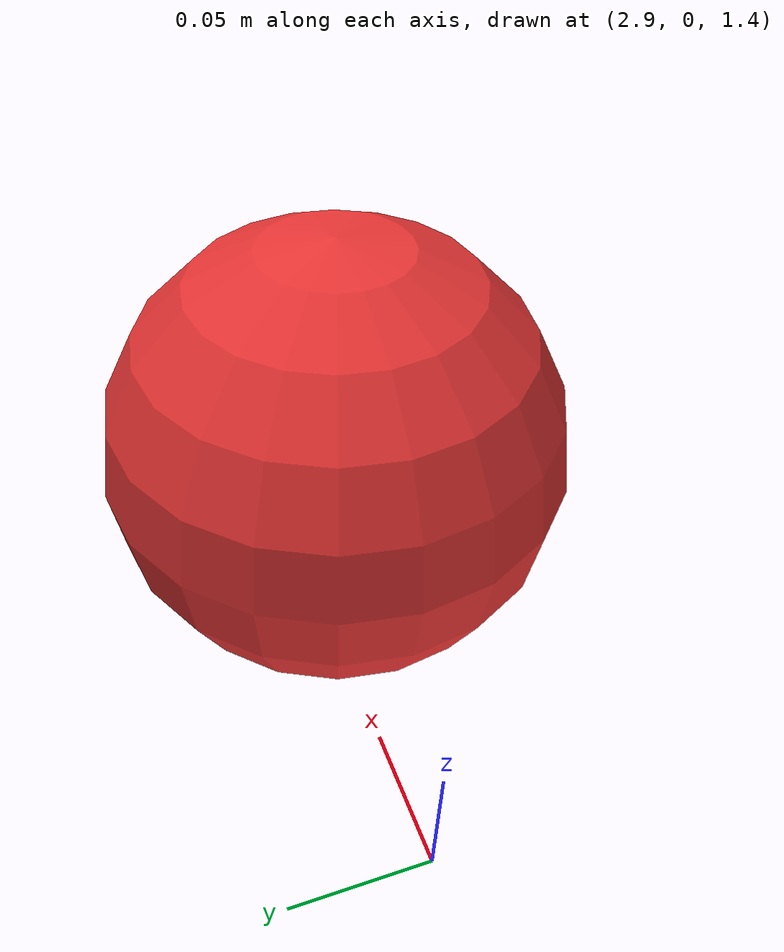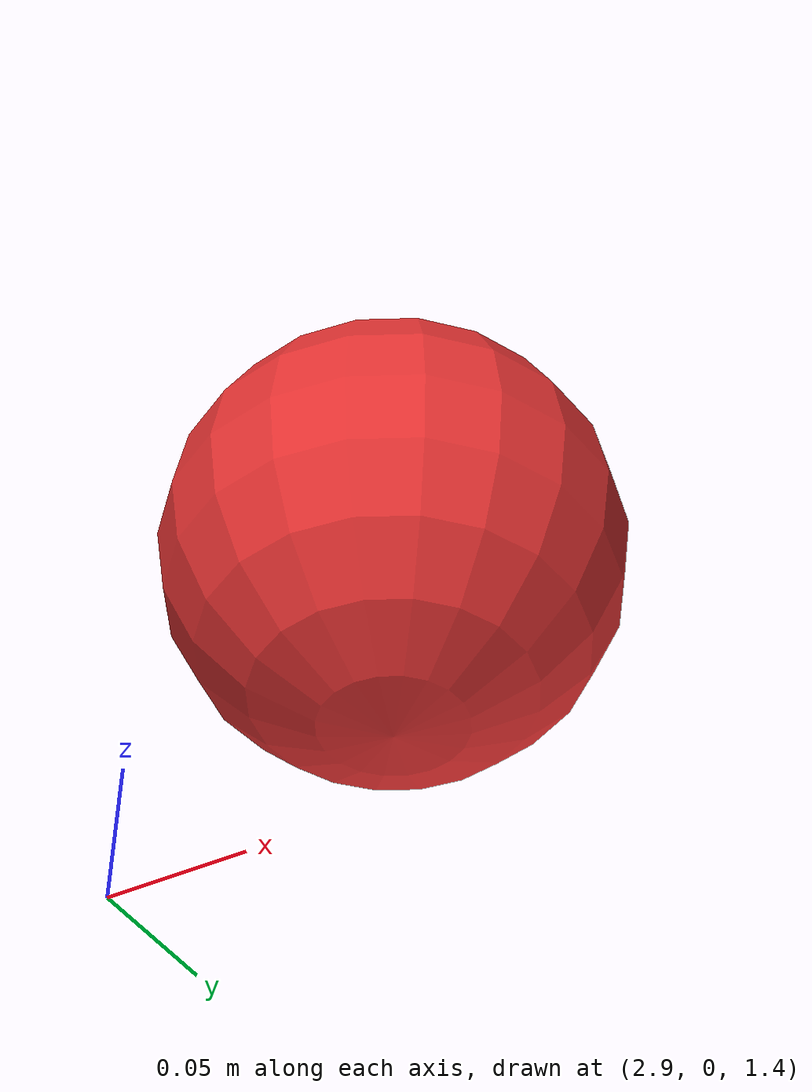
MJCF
<mujoco model="g1_dodge_browser">
  <compiler angle="radian" autolimits="true"/>

  <option timestep="0.005" iterations="10" ls_iterations="20" integrator="implicitfast"/>

  <default>
    <default class="g1">
      <default class="collision">
        <geom type="capsule" priority="1" condim="1" group="3"/>
        <default class="foot_capsule">
          <geom size="0.01" condim="3" friction="0.6 0.005 0.0001"/>
        </default>
      </default>
      <site rgba="1 0 0 1" group="5"/>
    </default>
  </default>

  <asset>
    <material name="silver" rgba="0.7 0.7 0.7 1"/>
    <material name="black" rgba="0.2 0.2 0.2 1"/>

    <texture name="grid" type="2d" builtin="checker" rgb1="0.18 0.20 0.23" rgb2="0.23 0.25 0.29"
             width="512" height="512"/>
    <material name="grid" texture="grid" texrepeat="8 8" texuniform="true" reflectance="0.05"/>

  </asset>

  <worldbody>
    <geom name="floor" type="plane" size="0 0 0.05" material="grid"/>
    <light pos="0 0 4" dir="0 0 -1" directional="true"/>
    <body name="pelvis" pos="0 0 0.79" childclass="g1">
      <light pos="0 0 2" mode="trackcom"/>
      <camera name="tracking" pos="1.734 -1.135 .35" xyaxes="0.552 0.834 -0.000 -0.170 0.112 0.979" mode="trackcom"/>
      <inertial pos="0 0 -0.07605" quat="1 0 -0.000399148 0" mass="3.813" diaginertia="0.010549 0.0093089 0.0079184"/>
      <freejoint name="floating_base_joint"/>
      <geom name="pelvis_collision" class="collision" type="sphere" size="0.07" pos="0 0 -0.08"/>
      <site name="imu_in_pelvis" size="0.01" pos="0.04525 0 -0.08339"/>
      <body name="left_hip_pitch_link" pos="0 0.064452 -0.1027">
        <inertial pos="0.002741 0.047791 -0.02606" quat="0.954862 0.293964 0.0302556 0.030122" mass="1.35" diaginertia="0.00181517 0.00153422 0.00116212"/>
        <joint name="left_hip_pitch_joint" axis="0 1 0" range="-2.5307 2.8798" armature="0.02510192500"/>
        <body name="left_hip_roll_link" pos="0 0.052 -0.030465" quat="0.996179 0 -0.0873386 0">
          <inertial pos="0.029812 -0.001045 -0.087934" quat="0.977808 -1.97119e-05 0.205576 -0.0403793" mass="1.52" diaginertia="0.00254986 0.00241169 0.00148755"/>
          <joint name="left_hip_roll_joint" axis="1 0 0" range="-0.5236 2.9671" armature="0.02510192500"/>
          <geom name="left_hip_collision" class="collision" size="0.06" fromto="0.02 0 0 0.02 0 -0.08"/>
          <body name="left_hip_yaw_link" pos="0.025001 0 -0.12412">
            <inertial pos="-0.057709 -0.010981 -0.15078" quat="0.600598 0.15832 0.223482 0.751181" mass="1.702" diaginertia="0.00776166 0.00717575 0.00160139"/>
            <joint name="left_hip_yaw_joint" axis="0 0 1" range="-2.7576 2.7576" armature="0.01017752004"/>
            <geom name="left_thigh_collision" class="collision" size="0.055" fromto="-0.0 0 -0.03 -0.06 0 -0.17"/>
            <body name="left_knee_link" pos="-0.078273 0.0021489 -0.17734" quat="0.996179 0 0.0873386 0">
              <inertial pos="0.005457 0.003964 -0.12074" quat="0.923418 -0.0327699 0.0158246 0.382067" mass="1.932" diaginertia="0.0113804 0.0112778 0.00146458"/>
              <joint name="left_knee_joint" axis="0 1 0" range="-0.087267 2.8798" armature="0.02510192500"/>
              <geom name="left_shin_collision" class="collision" size="0.045" fromto="0.01 0 0 0.01 0 -0.15"/>
              <geom name="left_linkage_brace_collision" class="collision" size="0.03" fromto="0.01 0 -0.2 0.01 0 -0.28"/>
              <body name="left_ankle_pitch_link" pos="0 -9.4445e-05 -0.30001">
                <inertial pos="-0.007269 0 0.011137" quat="0.603053 0.369225 0.369225 0.603053" mass="0.074" diaginertia="1.89e-05 1.40805e-05 6.9195e-06"/>
                <joint name="left_ankle_pitch_joint" axis="0 1 0" range="-0.87267 0.5236" armature="0.007219450000"/>
                <body name="left_ankle_roll_link" pos="0 0 -0.017558">
                  <inertial pos="0.026505 0 -0.016425" quat="-0.000481092 0.728482 -0.000618967 0.685065" mass="0.608" diaginertia="0.00167218 0.0016161 0.000217621"/>
                  <joint name="left_ankle_roll_joint" axis="1 0 0" range="-0.2618 0.2618" armature="0.007219450000"/>
                  <geom name="left_foot1_collision" class="foot_capsule" fromto="0.1 -0.026 -0.025 0.05 -0.027 -0.025"/>
                  <geom name="left_foot2_collision" class="foot_capsule" fromto="-0.044 -0.018 -0.025 0.123 -0.018 -0.025"/>
                  <geom name="left_foot3_collision" class="foot_capsule" fromto="-0.052 -0.01 -0.025 0.13 -0.01 -0.025"/>
                  <geom name="left_foot4_collision" class="foot_capsule" fromto="-0.054 0 -0.025 0.132 0 -0.025"/>
                  <geom name="left_foot5_collision" class="foot_capsule" fromto="-0.052 0.01 -0.025 0.13 0.01 -0.025"/>
                  <geom name="left_foot6_collision" class="foot_capsule" fromto="-0.044 0.018 -0.025 0.123 0.018 -0.025"/>
                  <geom name="left_foot7_collision" class="foot_capsule" fromto="0.1 0.026 -0.025 0.05 0.026 -0.025"/>
                  <site name="left_foot" rgba="1 0 0 1" pos="0.04 0 -0.035"/>
                </body>
              </body>
            </body>
          </body>
        </body>
      </body>
      <body name="right_hip_pitch_link" pos="0 -0.064452 -0.1027">
        <inertial pos="0.002741 -0.047791 -0.02606" quat="0.954862 -0.293964 0.0302556 -0.030122" mass="1.35" diaginertia="0.00181517 0.00153422 0.00116212"/>
        <joint name="right_hip_pitch_joint" axis="0 1 0" range="-2.5307 2.8798" armature="0.02510192500"/>
        <body name="right_hip_roll_link" pos="0 -0.052 -0.030465" quat="0.996179 0 -0.0873386 0">
          <inertial pos="0.029812 0.001045 -0.087934" quat="0.977808 1.97119e-05 0.205576 0.0403793" mass="1.52" diaginertia="0.00254986 0.00241169 0.00148755"/>
          <joint name="right_hip_roll_joint" axis="1 0 0" range="-2.9671 0.5236" armature="0.02510192500"/>
          <geom name="right_hip_collision" class="collision" size="0.06" fromto="0.02 0 0 0.02 0 -0.08"/>
          <body name="right_hip_yaw_link" pos="0.025001 0 -0.12412">
            <inertial pos="-0.057709 0.010981 -0.15078" quat="0.751181 0.223482 0.15832 0.600598" mass="1.702" diaginertia="0.00776166 0.00717575 0.00160139"/>
            <joint name="right_hip_yaw_joint" axis="0 0 1" range="-2.7576 2.7576" armature="0.01017752004"/>
            <geom name="right_thigh_collision" class="collision" size="0.055" fromto="-0.0 0 -0.03 -0.06 0 -0.17"/>
            <body name="right_knee_link" pos="-0.078273 -0.0021489 -0.17734" quat="0.996179 0 0.0873386 0">
              <inertial pos="0.005457 -0.003964 -0.12074" quat="0.923439 0.0345276 0.0116333 -0.382012" mass="1.932" diaginertia="0.011374 0.0112843 0.00146452"/>
              <joint name="right_knee_joint" axis="0 1 0" range="-0.087267 2.8798" armature="0.02510192500"/>
              <geom name="right_shin_collision" class="collision" size="0.045" fromto="0.01 0 0 0.01 0 -0.15"/>
              <geom name="right_linkage_brace_collision" class="collision" size="0.03" fromto="0.01 0 -0.2 0.01 0 -0.28"/>
              <body name="right_ankle_pitch_link" pos="0 9.4445e-05 -0.30001">
                <inertial pos="-0.007269 0 0.011137" quat="0.603053 0.369225 0.369225 0.603053" mass="0.074" diaginertia="1.89e-05 1.40805e-05 6.9195e-06"/>
                <joint name="right_ankle_pitch_joint" axis="0 1 0" range="-0.87267 0.5236" armature="0.007219450000"/>
                <body name="right_ankle_roll_link" pos="0 0 -0.017558">
                  <inertial pos="0.026505 0 -0.016425" quat="0.000481092 0.728482 0.000618967 0.685065" mass="0.608" diaginertia="0.00167218 0.0016161 0.000217621"/>
                  <joint name="right_ankle_roll_joint" axis="1 0 0" range="-0.2618 0.2618" armature="0.007219450000"/>
                  <geom name="right_foot1_collision" class="foot_capsule" fromto="0.1 -0.026 -0.025 0.05 -0.026 -0.025"/>
                  <geom name="right_foot2_collision" class="foot_capsule" fromto="-0.044 -0.018 -0.025 0.123 -0.018 -0.025"/>
                  <geom name="right_foot3_collision" class="foot_capsule" fromto="-0.052 -0.01 -0.025 0.13 -0.01 -0.025"/>
                  <geom name="right_foot4_collision" class="foot_capsule" fromto="-0.054 0 -0.025 0.132 0 -0.025"/>
                  <geom name="right_foot5_collision" class="foot_capsule" fromto="-0.052 0.01 -0.025 0.13 0.01 -0.025"/>
                  <geom name="right_foot6_collision" class="foot_capsule" fromto="-0.044 0.018 -0.025 0.123 0.018 -0.025"/>
                  <geom name="right_foot7_collision" class="foot_capsule" fromto="0.1 0.026 -0.025 0.05 0.026 -0.025"/>
                  <site name="right_foot" rgba="1 0 0 1" pos="0.04 0 -0.035"/>
                </body>
              </body>
            </body>
          </body>
        </body>
      </body>
      <body name="waist_yaw_link">
        <inertial pos="0.003494 0.000233 0.018034" quat="0.289697 0.591001 -0.337795 0.672821" mass="0.214" diaginertia="0.000163531 0.000107714 0.000102205"/>
        <joint name="waist_yaw_joint" axis="0 0 1" range="-2.618 2.618" armature="0.01017752004"/>
        <body name="waist_roll_link" pos="-0.0039635 0 0.044">
          <inertial pos="0 2.3e-05 0" quat="0.5 0.5 -0.5 0.5" mass="0.086" diaginertia="8.245e-06 7.079e-06 6.339e-06"/>
          <joint name="waist_roll_joint" axis="1 0 0" range="-0.52 0.52" armature="0.007219450000"/>
          <body name="torso_link">
            <inertial pos="0.00203158 0.000339683 0.184568" quat="0.999803 -6.03319e-05 0.0198256 0.00131986" mass="7.818" diaginertia="0.121847 0.109825 0.0273735"/>
            <joint name="waist_pitch_joint" axis="0 1 0" range="-0.52 0.52" armature="0.007219450000"/>
            <geom name="torso_collision" class="collision" size="0.09" fromto="0.01 0 0.08 0.01 0 0.2"/>
            <geom name="head_collision" class="collision" type="sphere" size="0.06" pos="0 0 .43"/>
            <camera name="head_camera" mode="fixed" pos="0.05 0 0.42" xyaxes="0 -1 0 -0.17365 0 0.98481" fovy="57"/>
            <camera name="head_camera_single" mode="fixed" pos="0.08 0 0.45" xyaxes="0 -1 0 -0.34202 0 0.93969" fovy="54"/>
            <site name="imu_in_torso" size="0.01" pos="-0.03959 -0.00224 0.14792"/>
            <body name="left_shoulder_pitch_link" pos="0.0039563 0.10022 0.24778" quat="0.990264 0.139201 1.38722e-05 -9.86868e-05">
              <inertial pos="0 0.035892 -0.011628" quat="0.654152 0.0130458 -0.326267 0.68225" mass="0.718" diaginertia="0.000465864 0.000432842 0.000406394"/>
              <joint name="left_shoulder_pitch_joint" axis="0 1 0" range="-3.0892 2.6704" armature="0.003609725000"/>
              <body name="left_shoulder_roll_link" pos="0 0.038 -0.013831" quat="0.990268 -0.139172 0 0">
                <inertial pos="-0.000227 0.00727 -0.063243" quat="0.701256 -0.0196223 -0.00710317 0.712604" mass="0.643" diaginertia="0.000691311 0.000618011 0.000388977"/>
                <joint name="left_shoulder_roll_joint" axis="1 0 0" range="-1.5882 2.2515" armature="0.003609725000"/>
                <body name="left_shoulder_yaw_link" pos="0 0.00624 -0.1032">
                  <inertial pos="0.010773 -0.002949 -0.072009" quat="0.716879 -0.0964829 -0.0679942 0.687134" mass="0.734" diaginertia="0.00106187 0.00103217 0.000400661"/>
                  <joint name="left_shoulder_yaw_joint" axis="0 0 1" range="-2.618 2.618" armature="0.003609725000"/>
                  <geom name="left_shoulder_yaw_collision" class="collision" size="0.035" fromto="0 0 -0.08 0 0 0.05"/>
                  <body name="left_elbow_link" pos="0.015783 0 -0.080518">
                    <inertial pos="0.064956 0.004454 -0.010062" quat="0.541765 0.636132 0.388821 0.388129" mass="0.6" diaginertia="0.000443035 0.000421612 0.000259353"/>
                    <joint name="left_elbow_joint" axis="0 1 0" range="-1.0472 2.0944" armature="0.003609725000"/>
                    <geom name="left_elbow_yaw_collision" class="collision" size="0.035" fromto="-0.01 0 -0.01 0.08 0 -0.01"/>
                    <body name="left_wrist_roll_link" pos="0.1 0.00188791 -0.01">
                      <inertial pos="0.0171394 0.000537591 4.8864e-07" quat="0.575338 0.411667 -0.574906 0.411094" mass="0.085445" diaginertia="5.48211e-05 4.96646e-05 3.57798e-05"/>
                      <joint name="left_wrist_roll_joint" axis="1 0 0" range="-1.97222 1.97222" armature="0.003609725000"/>
                      <body name="left_wrist_pitch_link" pos="0.038 0 0">
                        <inertial pos="0.0229999 -0.00111685 -0.00111658" quat="0.249998 0.661363 0.293036 0.643608" mass="0.48405" diaginertia="0.000430353 0.000429873 0.000164648"/>
                        <joint name="left_wrist_pitch_joint" axis="0 1 0" range="-1.61443 1.61443" armature="0.002181200000"/>
                        <geom name="left_wrist_collision" class="collision" size="0.035" fromto="-0.01 0 0 0.06 0 0"/>
                        <body name="left_wrist_yaw_link" pos="0.046 0 0">
                          <inertial pos="0.0708244 0.000191745 0.00161742" quat="0.510571 0.526295 0.468078 0.493188" mass="0.254576" diaginertia="0.000646113 0.000559993 0.000147566"/>
                          <joint name="left_wrist_yaw_joint" axis="0 0 1" range="-1.61443 1.61443" armature="0.002181200000"/>
                          <site name="left_palm" pos="0.08 0 0" size="0.01"/>
                          <geom name="left_hand_collision" class="collision" size="0.035" rgba=".2 .6 .2 .2" fromto="0.07 0 0 0.15 -0.02 0"/>
                        </body>
                      </body>
                    </body>
                  </body>
                </body>
              </body>
            </body>
            <body name="right_shoulder_pitch_link" pos="0.0039563 -0.10021 0.24778" quat="0.990264 -0.139201 1.38722e-05 9.86868e-05">
              <inertial pos="0 -0.035892 -0.011628" quat="0.68225 -0.326267 0.0130458 0.654152" mass="0.718" diaginertia="0.000465864 0.000432842 0.000406394"/>
              <joint name="right_shoulder_pitch_joint" axis="0 1 0" range="-3.0892 2.6704" armature="0.003609725000"/>
              <body name="right_shoulder_roll_link" pos="0 -0.038 -0.013831" quat="0.990268 0.139172 0 0">
                <inertial pos="-0.000227 -0.00727 -0.063243" quat="0.712604 -0.00710317 -0.0196223 0.701256" mass="0.643" diaginertia="0.000691311 0.000618011 0.000388977"/>
                <joint name="right_shoulder_roll_joint" axis="1 0 0" range="-2.2515 1.5882" armature="0.003609725000"/>
                <body name="right_shoulder_yaw_link" pos="0 -0.00624 -0.1032">
                  <inertial pos="0.010773 0.002949 -0.072009" quat="0.687134 -0.0679942 -0.0964829 0.716879" mass="0.734" diaginertia="0.00106187 0.00103217 0.000400661"/>
                  <joint name="right_shoulder_yaw_joint" axis="0 0 1" range="-2.618 2.618" armature="0.003609725000"/>
                  <geom name="right_shoulder_yaw_collision" class="collision" size="0.035" fromto="0 0 -0.08 0 0 0.05"/>
                  <body name="right_elbow_link" pos="0.015783 0 -0.080518">
                    <inertial pos="0.064956 -0.004454 -0.010062" quat="0.388129 0.388821 0.636132 0.541765" mass="0.6" diaginertia="0.000443035 0.000421612 0.000259353"/>
                    <joint name="right_elbow_joint" axis="0 1 0" range="-1.0472 2.0944" armature="0.003609725000"/>
                    <geom name="right_elbow_yaw_collision" class="collision" size="0.035" fromto="-0.01 0 -0.01 0.08 0 -0.01"/>
                    <body name="right_wrist_roll_link" pos="0.1 -0.00188791 -0.01">
                      <inertial pos="0.0171394 -0.000537591 4.8864e-07" quat="0.411667 0.575338 -0.411094 0.574906" mass="0.085445" diaginertia="5.48211e-05 4.96646e-05 3.57798e-05"/>
                      <joint name="right_wrist_roll_joint" axis="1 0 0" range="-1.97222 1.97222" armature="0.003609725000"/>
                      <body name="right_wrist_pitch_link" pos="0.038 0 0">
                        <inertial pos="0.0229999 0.00111685 -0.00111658" quat="0.643608 0.293036 0.661363 0.249998" mass="0.48405" diaginertia="0.000430353 0.000429873 0.000164648"/>
                        <joint name="right_wrist_pitch_joint" axis="0 1 0" range="-1.61443 1.61443" armature="0.002181200000"/>
                        <geom name="right_wrist_collision" class="collision" size="0.035" fromto="-0.01 0 0 0.06 0 0"/>
                        <body name="right_wrist_yaw_link" pos="0.046 0 0">
                          <inertial pos="0.0708244 -0.000191745 0.00161742" quat="0.493188 0.468078 0.526295 0.510571" mass="0.254576" diaginertia="0.000646113 0.000559993 0.000147566"/>
                          <joint name="right_wrist_yaw_joint" axis="0 0 1" range="-1.61443 1.61443" armature="0.002181200000"/>
                          <site name="right_palm" pos="0.08 0 0" size="0.01"/>
                          <geom name="right_hand_collision" class="collision" size="0.035" rgba=".2 .6 .2 .2" fromto="0.07 0 0 0.15 0.02 0"/>
                        </body>
                      </body>
                    </body>
                  </body>
                </body>
              </body>
            </body>
          </body>
        </body>
      </body>
    </body>
    <body name="ball" pos="3 0 1.5">
      <freejoint name="ball_free"/>
      <geom name="ball_collision" type="sphere" size="0.0762" mass="0.136" rgba="0.9 0.2 0.2 1"/>
    </body>

  </worldbody>
  <contact>
    <exclude body1="left_elbow_link" body2="left_wrist_pitch_link"/>
    <exclude body1="right_elbow_link" body2="right_wrist_pitch_link"/>
    <exclude body1="pelvis" body2="right_hip_roll_link"/>
    <exclude body1="pelvis" body2="left_hip_roll_link"/>
  </contact>
  <sensor>
    <gyro name="imu_ang_vel" site="imu_in_pelvis"/>
    <velocimeter name="imu_lin_vel" site="imu_in_pelvis"/>
    <accelerometer name="imu_lin_acc" site="imu_in_pelvis"/>
    <subtreeangmom name="root_angmom" body="pelvis"/>
    <framequat name="base_quat" objtype="body" objname="pelvis"/>
  </sensor>
  <actuator>
    <position name="left_hip_pitch_joint" joint="left_hip_pitch_joint" kp="99.09842778" kv="6.308801853" forcerange="-139 139"/>
    <position name="left_hip_roll_joint" joint="left_hip_roll_joint" kp="99.09842778" kv="6.308801853" forcerange="-139 139"/>
    <position name="left_hip_yaw_joint" joint="left_hip_yaw_joint" kp="40.17923863" kv="2.557889775" forcerange="-88 88"/>
    <position name="left_knee_joint" joint="left_knee_joint" kp="99.09842778" kv="6.308801853" forcerange="-139 139"/>
    <position name="left_ankle_pitch_joint" joint="left_ankle_pitch_joint" kp="28.50124620" kv="1.814445687" forcerange="-50 50"/>
    <position name="left_ankle_roll_joint" joint="left_ankle_roll_joint" kp="28.50124620" kv="1.814445687" forcerange="-50 50"/>
    <position name="right_hip_pitch_joint" joint="right_hip_pitch_joint" kp="99.09842778" kv="6.308801853" forcerange="-139 139"/>
    <position name="right_hip_roll_joint" joint="right_hip_roll_joint" kp="99.09842778" kv="6.308801853" forcerange="-139 139"/>
    <position name="right_hip_yaw_joint" joint="right_hip_yaw_joint" kp="40.17923863" kv="2.557889775" forcerange="-88 88"/>
    <position name="right_knee_joint" joint="right_knee_joint" kp="99.09842778" kv="6.308801853" forcerange="-139 139"/>
    <position name="right_ankle_pitch_joint" joint="right_ankle_pitch_joint" kp="28.50124620" kv="1.814445687" forcerange="-50 50"/>
    <position name="right_ankle_roll_joint" joint="right_ankle_roll_joint" kp="28.50124620" kv="1.814445687" forcerange="-50 50"/>
    <position name="waist_yaw_joint" joint="waist_yaw_joint" kp="40.17923863" kv="2.557889775" forcerange="-88 88"/>
    <position name="waist_roll_joint" joint="waist_roll_joint" kp="28.50124620" kv="1.814445687" forcerange="-50 50"/>
    <position name="waist_pitch_joint" joint="waist_pitch_joint" kp="28.50124620" kv="1.814445687" forcerange="-50 50"/>
    <position name="left_shoulder_pitch_joint" joint="left_shoulder_pitch_joint" kp="14.25062310" kv="0.9072228433" forcerange="-25 25"/>
    <position name="left_shoulder_roll_joint" joint="left_shoulder_roll_joint" kp="14.25062310" kv="0.9072228433" forcerange="-25 25"/>
    <position name="left_shoulder_yaw_joint" joint="left_shoulder_yaw_joint" kp="14.25062310" kv="0.9072228433" forcerange="-25 25"/>
    <position name="left_elbow_joint" joint="left_elbow_joint" kp="14.25062310" kv="0.9072228433" forcerange="-25 25"/>
    <position name="left_wrist_roll_joint" joint="left_wrist_roll_joint" kp="14.25062310" kv="0.9072228433" forcerange="-25 25"/>
    <position name="left_wrist_pitch_joint" joint="left_wrist_pitch_joint" kp="8.611032447" kv="0.5481953517" forcerange="-10 10"/>
    <position name="left_wrist_yaw_joint" joint="left_wrist_yaw_joint" kp="8.611032447" kv="0.5481953517" forcerange="-10 10"/>
    <position name="right_shoulder_pitch_joint" joint="right_shoulder_pitch_joint" kp="14.25062310" kv="0.9072228433" forcerange="-25 25"/>
    <position name="right_shoulder_roll_joint" joint="right_shoulder_roll_joint" kp="14.25062310" kv="0.9072228433" forcerange="-25 25"/>
    <position name="right_shoulder_yaw_joint" joint="right_shoulder_yaw_joint" kp="14.25062310" kv="0.9072228433" forcerange="-25 25"/>
    <position name="right_elbow_joint" joint="right_elbow_joint" kp="14.25062310" kv="0.9072228433" forcerange="-25 25"/>
    <position name="right_wrist_roll_joint" joint="right_wrist_roll_joint" kp="14.25062310" kv="0.9072228433" forcerange="-25 25"/>
    <position name="right_wrist_pitch_joint" joint="right_wrist_pitch_joint" kp="8.611032447" kv="0.5481953517" forcerange="-10 10"/>
    <position name="right_wrist_yaw_joint" joint="right_wrist_yaw_joint" kp="8.611032447" kv="0.5481953517" forcerange="-10 10"/>
  </actuator>

</mujoco>
